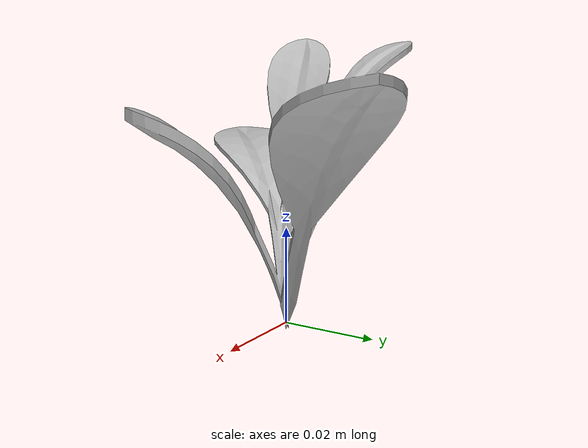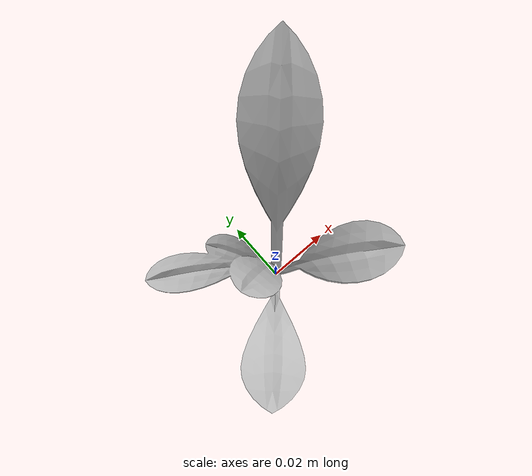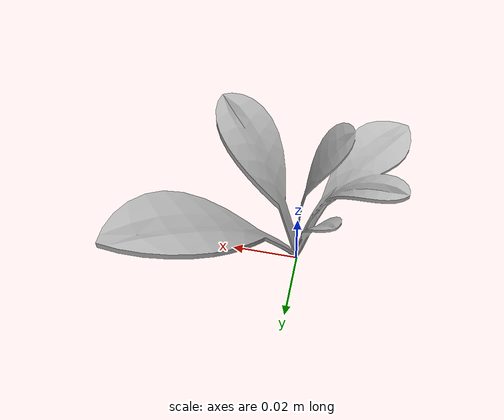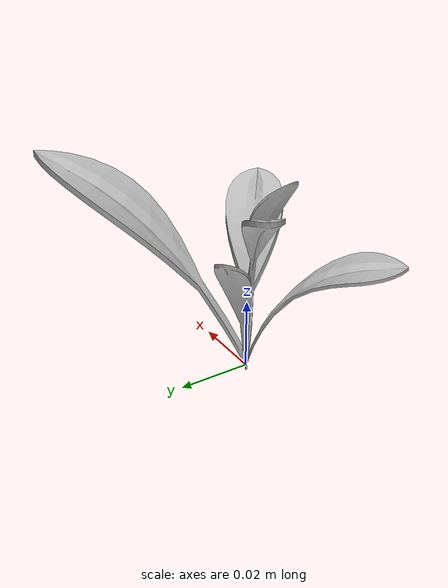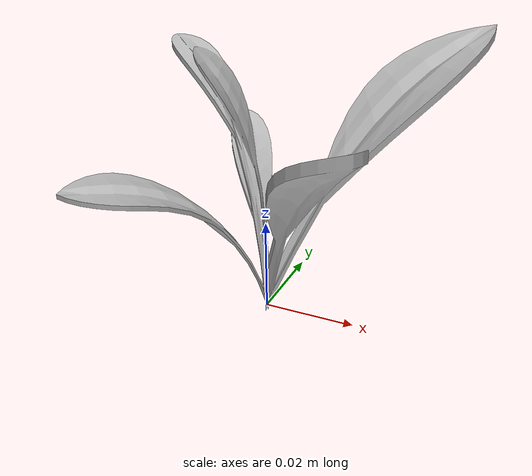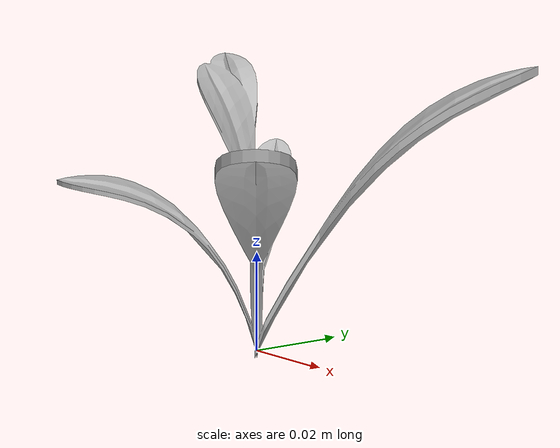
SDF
<sdf version="1.6">
  <model name="sugar_beet_36">
    <static>true</static>
    <link name="body">
      <visual name="visual">
        <geometry>
          <mesh>
            <uri>file:///sugar_beet_36/media/sugar_beet.dae</uri>
          </mesh>
        </geometry>
      </visual>
    </link>
  </model>
</sdf>
